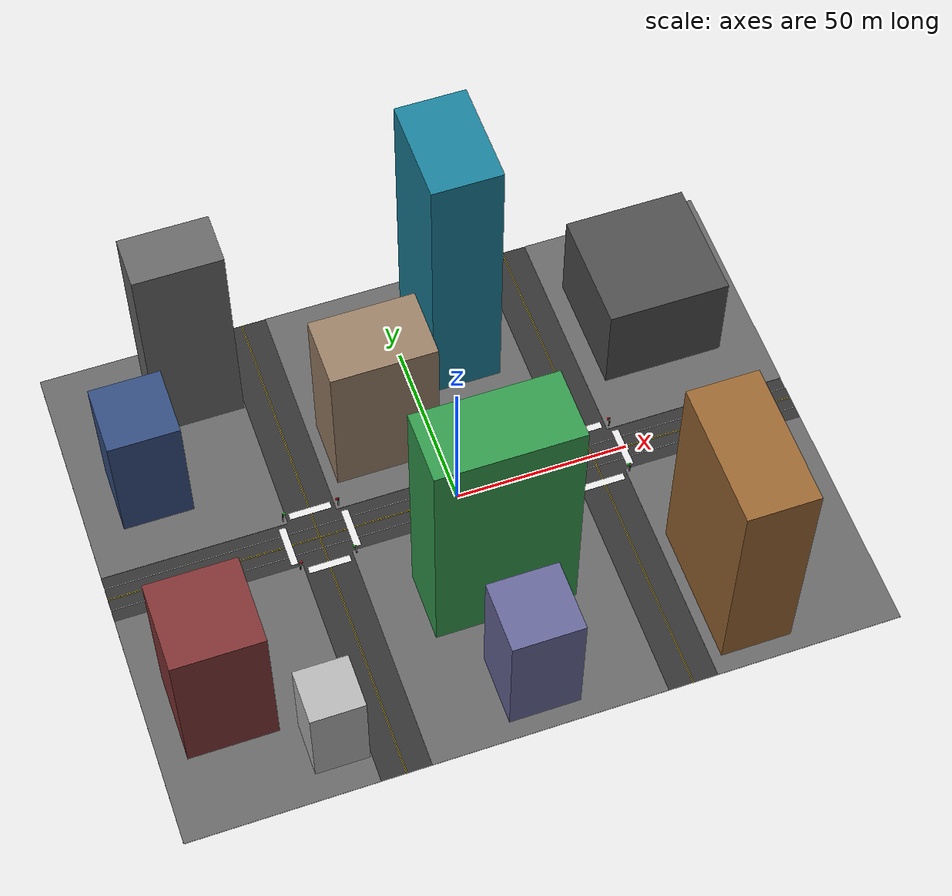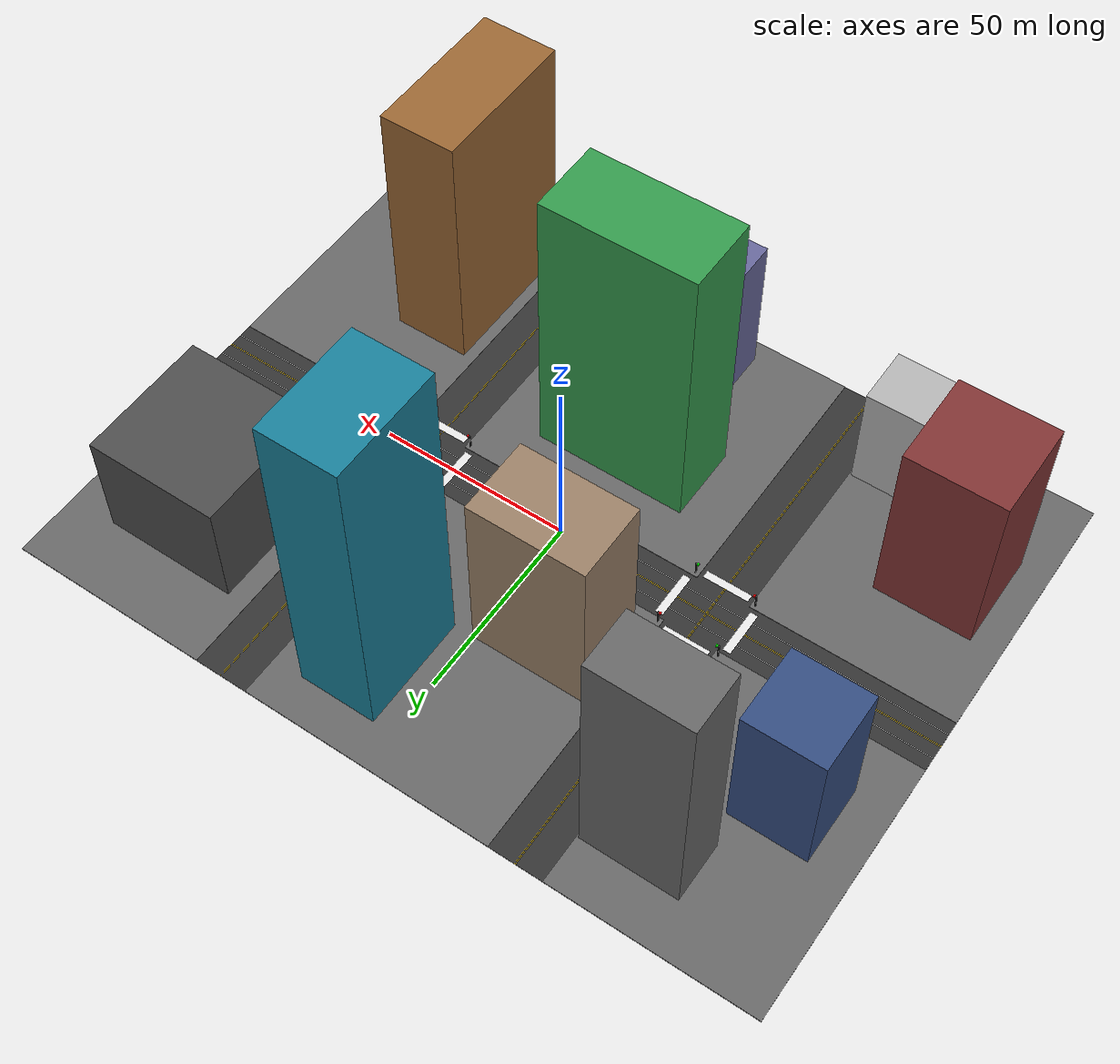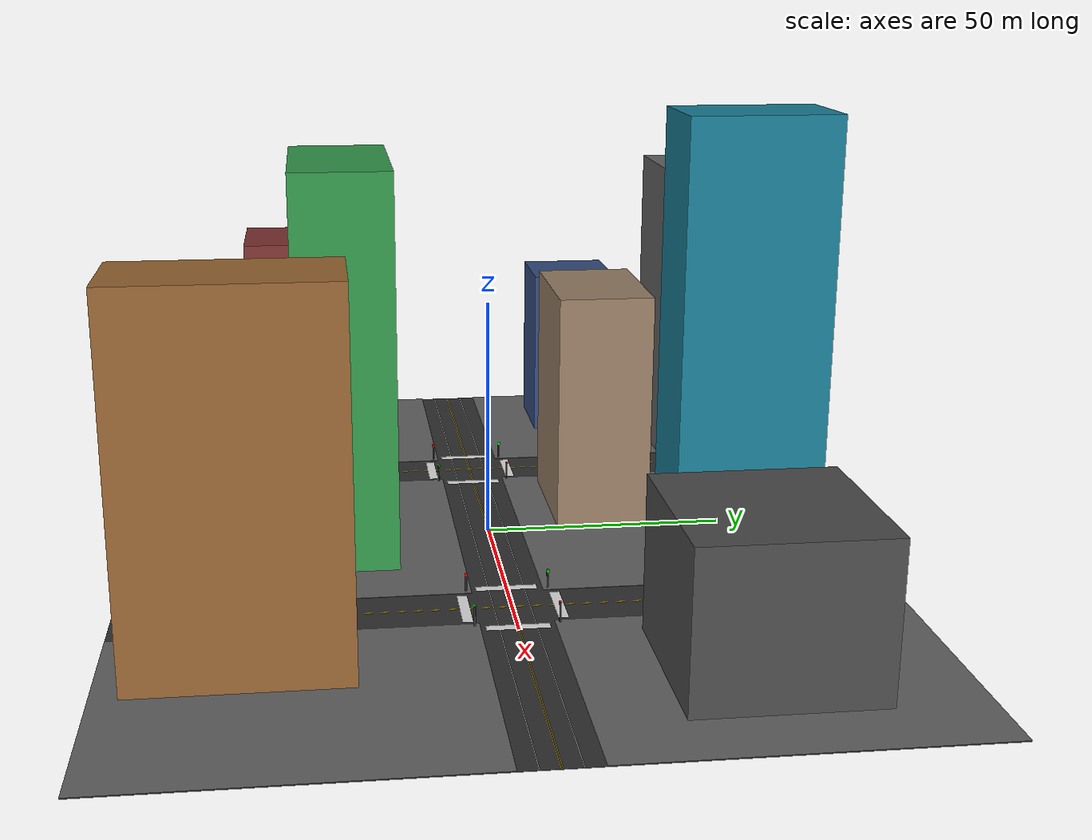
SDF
<?xml version="1.0" ?>
<sdf version="1.8">
  <world name="city_world">
    <!-- 필수 플러그인 -->
    <plugin filename="gz-sim-physics-system" name="gz::sim::systems::Physics"/>
    <plugin filename="gz-sim-user-commands-system" name="gz::sim::systems::UserCommands"/>
    <plugin filename="gz-sim-scene-broadcaster-system" name="gz::sim::systems::SceneBroadcaster"/>
    <plugin filename="gz-sim-sensors-system" name="gz::sim::systems::Sensors">
      <render_engine>ogre2</render_engine>
    </plugin>

    <!-- 태양광 설정 -->
    <light type="directional" name="sun">
      <cast_shadows>true</cast_shadows>
      <pose>0 0 20 0 0 0</pose>
      <diffuse>0.9 0.9 0.9 1</diffuse>
      <specular>0.2 0.2 0.2 1</specular>
      <direction>-0.5 0.5 -0.9</direction>
    </light>

    <!-- [1] 도시 지반 및 인도 (6블록 구성) -->
    <model name="city_ground">
      <static>true</static>
      <!-- 아스팔트 바닥 -->
      <link name="asphalt">
        <collision name="collision"><geometry><box><size>200 150 0.1</size></box></geometry></collision>
        <visual name="visual">
          <geometry><box><size>200 150 0.1</size></box></geometry>
          <material><ambient>0.2 0.2 0.2 1</ambient><diffuse>0.2 0.2 0.2 1</diffuse></material>
        </visual>
      </link>

      <!-- 6개의 인도 블록 -->
      <link name="sidewalks">
        <visual name="block1"><pose>-73.5 41 0.15 0 0 0</pose><geometry><box><size>53 68 0.1</size></box></geometry><material><ambient>0.4 0.4 0.4 1</ambient><diffuse>0.4 0.4 0.4 1</diffuse></material></visual>
        <visual name="block2"><pose>0 41 0.15 0 0 0</pose><geometry><box><size>66 68 0.1</size></box></geometry><material><ambient>0.4 0.4 0.4 1</ambient><diffuse>0.4 0.4 0.4 1</diffuse></material></visual>
        <visual name="block3"><pose>73.5 41 0.15 0 0 0</pose><geometry><box><size>53 68 0.1</size></box></geometry><material><ambient>0.4 0.4 0.4 1</ambient><diffuse>0.4 0.4 0.4 1</diffuse></material></visual>
        <visual name="block4"><pose>-73.5 -41 0.15 0 0 0</pose><geometry><box><size>53 68 0.1</size></box></geometry><material><ambient>0.4 0.4 0.4 1</ambient><diffuse>0.4 0.4 0.4 1</diffuse></material></visual>
        <visual name="block5"><pose>0 -41 0.15 0 0 0</pose><geometry><box><size>66 68 0.1</size></box></geometry><material><ambient>0.4 0.4 0.4 1</ambient><diffuse>0.4 0.4 0.4 1</diffuse></material></visual>
        <visual name="block6"><pose>73.5 -41 0.15 0 0 0</pose><geometry><box><size>53 68 0.1</size></box></geometry><material><ambient>0.4 0.4 0.4 1</ambient><diffuse>0.4 0.4 0.4 1</diffuse></material></visual>
      </link>
    </model>

    <!-- [2] 도로 차선 마킹 (왕복 4차선) -->
    <model name="road_markings">
      <static>true</static>
      <link name="lines">
        <!-- 메인 가로축 도로 -->
        <visual name="x_center1"><pose>0 0.15 0.055 0 0 0</pose><geometry><box><size>200 0.1 0.01</size></box></geometry><material><ambient>1 0.8 0 1</ambient><diffuse>1 0.8 0 1</diffuse></material></visual>
        <visual name="x_center2"><pose>0 -0.15 0.055 0 0 0</pose><geometry><box><size>200 0.1 0.01</size></box></geometry><material><ambient>1 0.8 0 1</ambient><diffuse>1 0.8 0 1</diffuse></material></visual>
        <visual name="x_lane_L"><pose>0 3.5 0.055 0 0 0</pose><geometry><box><size>200 0.1 0.01</size></box></geometry><material><ambient>1 1 1 1</ambient><diffuse>1 1 1 1</diffuse></material></visual>
        <visual name="x_lane_R"><pose>0 -3.5 0.055 0 0 0</pose><geometry><box><size>200 0.1 0.01</size></box></geometry><material><ambient>1 1 1 1</ambient><diffuse>1 1 1 1</diffuse></material></visual>

        <!-- 세로축 교차 도로 -->
        <visual name="y1_center1"><pose>-39.85 0 0.056 0 0 0</pose><geometry><box><size>0.1 150 0.01</size></box></geometry><material><ambient>1 0.8 0 1</ambient><diffuse>1 0.8 0 1</diffuse></material></visual>
        <visual name="y1_center2"><pose>-40.15 0 0.056 0 0 0</pose><geometry><box><size>0.1 150 0.01</size></box></geometry><material><ambient>1 0.8 0 1</ambient><diffuse>1 0.8 0 1</diffuse></material></visual>
        <visual name="y2_center1"><pose>39.85 0 0.056 0 0 0</pose><geometry><box><size>0.1 150 0.01</size></box></geometry><material><ambient>1 0.8 0 1</ambient><diffuse>1 0.8 0 1</diffuse></material></visual>
        <visual name="y2_center2"><pose>40.15 0 0.056 0 0 0</pose><geometry><box><size>0.1 150 0.01</size></box></geometry><material><ambient>1 0.8 0 1</ambient><diffuse>1 0.8 0 1</diffuse></material></visual>
      </link>
    </model>

    <!-- [3] 교차로 횡단보도 (Zebra Crossings) -->
    <model name="crosswalks">
      <static>true</static>
      <link name="stripes">
        <!-- 교차로 1 횡단보도 -->
        <visual name="cw1_top"><pose>-40 9 0.057 0 0 0</pose><geometry><box><size>12 2 0.01</size></box></geometry><material><ambient>0.9 0.9 0.9 1</ambient><diffuse>0.9 0.9 0.9 1</diffuse></material></visual>
        <visual name="cw1_bot"><pose>-40 -9 0.057 0 0 0</pose><geometry><box><size>12 2 0.01</size></box></geometry><material><ambient>0.9 0.9 0.9 1</ambient><diffuse>0.9 0.9 0.9 1</diffuse></material></visual>
        <visual name="cw1_left"><pose>-49 0 0.057 0 0 0</pose><geometry><box><size>2 12 0.01</size></box></geometry><material><ambient>0.9 0.9 0.9 1</ambient><diffuse>0.9 0.9 0.9 1</diffuse></material></visual>
        <visual name="cw1_right"><pose>-31 0 0.057 0 0 0</pose><geometry><box><size>2 12 0.01</size></box></geometry><material><ambient>0.9 0.9 0.9 1</ambient><diffuse>0.9 0.9 0.9 1</diffuse></material></visual>

        <!-- 교차로 2 횡단보도 -->
        <visual name="cw2_top"><pose>40 9 0.057 0 0 0</pose><geometry><box><size>12 2 0.01</size></box></geometry><material><ambient>0.9 0.9 0.9 1</ambient><diffuse>0.9 0.9 0.9 1</diffuse></material></visual>
        <visual name="cw2_bot"><pose>40 -9 0.057 0 0 0</pose><geometry><box><size>12 2 0.01</size></box></geometry><material><ambient>0.9 0.9 0.9 1</ambient><diffuse>0.9 0.9 0.9 1</diffuse></material></visual>
        <visual name="cw2_left"><pose>31 0 0.057 0 0 0</pose><geometry><box><size>2 12 0.01</size></box></geometry><material><ambient>0.9 0.9 0.9 1</ambient><diffuse>0.9 0.9 0.9 1</diffuse></material></visual>
        <visual name="cw2_right"><pose>49 0 0.057 0 0 0</pose><geometry><box><size>2 12 0.01</size></box></geometry><material><ambient>0.9 0.9 0.9 1</ambient><diffuse>0.9 0.9 0.9 1</diffuse></material></visual>
      </link>
    </model>

    <!-- [4] 교차로 신호등 (8개 모서리) -->
    <model name="traffic_lights">
      <static>true</static>
      <link name="poles">
        <!-- 교차로 1 모서리 신호등 -->
        <visual name="tl1_1"><pose>-48 8 2 0 0 0</pose><geometry><cylinder><radius>0.2</radius><length>4</length></cylinder></geometry><material><ambient>0.2 0.2 0.2 1</ambient><diffuse>0.2 0.2 0.2 1</diffuse></material></visual>
        <visual name="tl1_1_light"><pose>-47.5 8 3.8 0 0 0</pose><geometry><box><size>0.5 0.5 0.5</size></box></geometry><material><ambient>0 1 0 1</ambient><diffuse>0 1 0 1</diffuse></material></visual>

        <visual name="tl1_2"><pose>-32 8 2 0 0 0</pose><geometry><cylinder><radius>0.2</radius><length>4</length></cylinder></geometry><material><ambient>0.2 0.2 0.2 1</ambient><diffuse>0.2 0.2 0.2 1</diffuse></material></visual>
        <visual name="tl1_2_light"><pose>-32.5 8 3.8 0 0 0</pose><geometry><box><size>0.5 0.5 0.5</size></box></geometry><material><ambient>1 0 0 1</ambient><diffuse>1 0 0 1</diffuse></material></visual>

        <visual name="tl1_3"><pose>-48 -8 2 0 0 0</pose><geometry><cylinder><radius>0.2</radius><length>4</length></cylinder></geometry><material><ambient>0.2 0.2 0.2 1</ambient><diffuse>0.2 0.2 0.2 1</diffuse></material></visual>
        <visual name="tl1_3_light"><pose>-47.5 -8 3.8 0 0 0</pose><geometry><box><size>0.5 0.5 0.5</size></box></geometry><material><ambient>1 0 0 1</ambient><diffuse>1 0 0 1</diffuse></material></visual>

        <visual name="tl1_4"><pose>-32 -8 2 0 0 0</pose><geometry><cylinder><radius>0.2</radius><length>4</length></cylinder></geometry><material><ambient>0.2 0.2 0.2 1</ambient><diffuse>0.2 0.2 0.2 1</diffuse></material></visual>
        <visual name="tl1_4_light"><pose>-32.5 -8 3.8 0 0 0</pose><geometry><box><size>0.5 0.5 0.5</size></box></geometry><material><ambient>0 1 0 1</ambient><diffuse>0 1 0 1</diffuse></material></visual>

        <!-- 교차로 2 모서리 신호등 -->
        <visual name="tl2_1"><pose>32 8 2 0 0 0</pose><geometry><cylinder><radius>0.2</radius><length>4</length></cylinder></geometry><material><ambient>0.2 0.2 0.2 1</ambient><diffuse>0.2 0.2 0.2 1</diffuse></material></visual>
        <visual name="tl2_1_light"><pose>32.5 8 3.8 0 0 0</pose><geometry><box><size>0.5 0.5 0.5</size></box></geometry><material><ambient>0 1 0 1</ambient><diffuse>0 1 0 1</diffuse></material></visual>

        <visual name="tl2_2"><pose>48 8 2 0 0 0</pose><geometry><cylinder><radius>0.2</radius><length>4</length></cylinder></geometry><material><ambient>0.2 0.2 0.2 1</ambient><diffuse>0.2 0.2 0.2 1</diffuse></material></visual>
        <visual name="tl2_2_light"><pose>47.5 8 3.8 0 0 0</pose><geometry><box><size>0.5 0.5 0.5</size></box></geometry><material><ambient>1 0 0 1</ambient><diffuse>1 0 0 1</diffuse></material></visual>

        <visual name="tl2_3"><pose>32 -8 2 0 0 0</pose><geometry><cylinder><radius>0.2</radius><length>4</length></cylinder></geometry><material><ambient>0.2 0.2 0.2 1</ambient><diffuse>0.2 0.2 0.2 1</diffuse></material></visual>
        <visual name="tl2_3_light"><pose>32.5 -8 3.8 0 0 0</pose><geometry><box><size>0.5 0.5 0.5</size></box></geometry><material><ambient>1 0 0 1</ambient><diffuse>1 0 0 1</diffuse></material></visual>

        <visual name="tl2_4"><pose>48 -8 2 0 0 0</pose><geometry><cylinder><radius>0.2</radius><length>4</length></cylinder></geometry><material><ambient>0.2 0.2 0.2 1</ambient><diffuse>0.2 0.2 0.2 1</diffuse></material></visual>
        <visual name="tl2_4_light"><pose>47.5 -8 3.8 0 0 0</pose><geometry><box><size>0.5 0.5 0.5</size></box></geometry><material><ambient>0 1 0 1</ambient><diffuse>0 1 0 1</diffuse></material></visual>
      </link>
    </model>

    <!-- [5] 고층 빌딩 군집 (각 블록당 2~3개 배치) -->
    <model name="city_buildings">
      <static>true</static>
      <!-- 블록 1 -->
      <link name="b1_1">
        <pose>-80 30 20.2 0 0 0</pose>
        <collision name="c"><geometry><box><size>20 20 40</size></box></geometry></collision>
        <visual name="v"><geometry><box><size>20 20 40</size></box></geometry><material><ambient>0.2 0.3 0.5 1</ambient><diffuse>0.2 0.3 0.5 1</diffuse></material></visual>
      </link>
      <link name="b1_2">
        <pose>-60 55 35.2 0 0 0</pose>
        <collision name="c"><geometry><box><size>25 15 70</size></box></geometry></collision>
        <visual name="v"><geometry><box><size>25 15 70</size></box></geometry><material><ambient>0.4 0.4 0.4 1</ambient><diffuse>0.4 0.4 0.4 1</diffuse></material></visual>
      </link>

      <!-- 블록 2 -->
      <link name="b2_1">
        <pose>-15 25 25.2 0 0 0</pose>
        <collision name="c"><geometry><box><size>30 20 50</size></box></geometry></collision>
        <visual name="v"><geometry><box><size>30 20 50</size></box></geometry><material><ambient>0.6 0.5 0.4 1</ambient><diffuse>0.6 0.5 0.4 1</diffuse></material></visual>
      </link>
      <link name="b2_2">
        <pose>15 50 45.2 0 0 0</pose>
        <collision name="c"><geometry><box><size>20 30 90</size></box></geometry></collision>
        <visual name="v"><geometry><box><size>20 30 90</size></box></geometry><material><ambient>0.1 0.5 0.6 1</ambient><diffuse>0.1 0.5 0.6 1</diffuse></material></visual>
      </link>

      <!-- 블록 3 -->
      <link name="b3_1">
        <pose>70 40 15.2 0 0 0</pose>
        <collision name="c"><geometry><box><size>35 35 30</size></box></geometry></collision>
        <visual name="v"><geometry><box><size>35 35 30</size></box></geometry><material><ambient>0.3 0.3 0.3 1</ambient><diffuse>0.3 0.3 0.3 1</diffuse></material></visual>
      </link>

      <!-- 블록 4 -->
      <link name="b4_1">
        <pose>-80 -40 25.2 0 0 0</pose>
        <collision name="c"><geometry><box><size>25 25 50</size></box></geometry></collision>
        <visual name="v"><geometry><box><size>25 25 50</size></box></geometry><material><ambient>0.5 0.2 0.2 1</ambient><diffuse>0.5 0.2 0.2 1</diffuse></material></visual>
      </link>
      <link name="b4_2">
        <pose>-55 -60 15.2 0 0 0</pose>
        <collision name="c"><geometry><box><size>15 15 30</size></box></geometry></collision>
        <visual name="v"><geometry><box><size>15 15 30</size></box></geometry><material><ambient>0.7 0.7 0.7 1</ambient><diffuse>0.7 0.7 0.7 1</diffuse></material></visual>
      </link>

      <!-- 블록 5 -->
      <link name="b5_1">
        <pose>0 -30 40.2 0 0 0</pose>
        <collision name="c"><geometry><box><size>40 20 80</size></box></geometry></collision>
        <visual name="v"><geometry><box><size>40 20 80</size></box></geometry><material><ambient>0.2 0.6 0.3 1</ambient><diffuse>0.2 0.6 0.3 1</diffuse></material></visual>
      </link>
      <link name="b5_2">
        <pose>0 -60 20.2 0 0 0</pose>
        <collision name="c"><geometry><box><size>20 20 40</size></box></geometry></collision>
        <visual name="v"><geometry><box><size>20 20 40</size></box></geometry><material><ambient>0.4 0.4 0.6 1</ambient><diffuse>0.4 0.4 0.6 1</diffuse></material></visual>
      </link>

      <!-- 블록 6 -->
      <link name="b6_1">
        <pose>60 -50 35.2 0 0 0</pose>
        <collision name="c"><geometry><box><size>20 40 70</size></box></geometry></collision>
        <visual name="v"><geometry><box><size>20 40 70</size></box></geometry><material><ambient>0.6 0.4 0.2 1</ambient><diffuse>0.6 0.4 0.2 1</diffuse></material></visual>
      </link>
    </model>
  </world>
</sdf>
